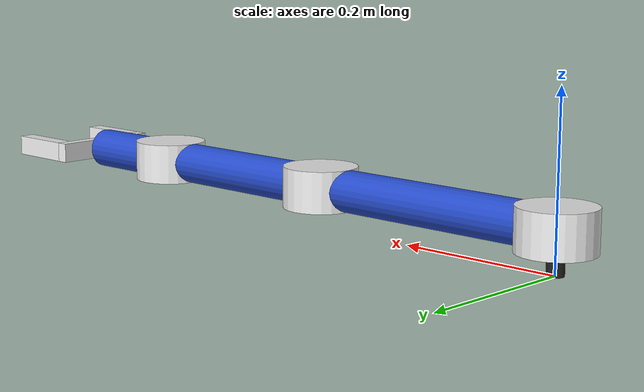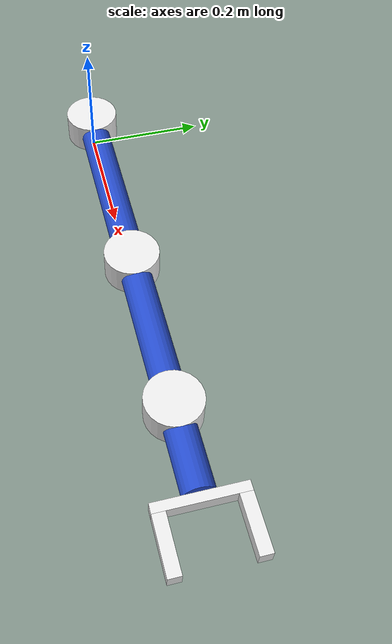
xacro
<?xml version="1.0"?>
<!-- Manipulator 2D robot (based on Revolute-Revolute Manipulator) -->
<robot name="manipulator2d" xmlns:xacro="http://www.ros.org/wiki/xacro">

  <!-- Constants for robot dimensions -->
  <xacro:property name="PI" value="3.1415926535897931"/>
  <xacro:property name="base_z" value="0.0" /> <!-- Height from world to base_link -->
  <xacro:property name="radius_base" value="0.01" />
  <xacro:property name="inner_radius_base" value="0.008" />
  <xacro:property name="joints_radius" value="0.025" />
  <xacro:property name="joints_inner_radius" value="0.0245" />
  <xacro:property name="height_base" value="0.05" /> <!-- Base -->
  <xacro:property name="height1" value="0.3" /> <!-- Link 1 -->
  <xacro:property name="height2" value="0.2" /> <!-- Link 2 -->
  <xacro:property name="height3" value="0.1" /> <!-- Link 3 -->
  <xacro:property name="camera_link" value="0.05" /> <!-- Size of square 'camera' box -->
  <xacro:property name="camera_x" value="0.0" /> <!-- X position 'camera' -->
  <xacro:property name="camera_y" value="0.0" /> <!-- Y position 'camera' -->
  <xacro:property name="camera_z" value="1.2" /> <!-- Z position 'camera' -->
  <xacro:property name="axel_offset" value="${joints_radius + 0.01}" />
  <xacro:property name="radius_axel" value="${axel_offset + 0.01}" />
  <xacro:property name="height_axel" value="${joints_radius*2}" />
  <xacro:property name="md_base" value="7850" /> <!-- Mass density -->
  <xacro:property name="md_links" value="2700" />
  <xacro:property name="mass_base" value="${md_base*PI*(radius_base-inner_radius_base)*height_base}" />
  <xacro:property name="mass1" value="${md_links*PI*(joints_radius-joints_inner_radius)*height1}" />
  <xacro:property name="mass2" value="${md_links*PI*(joints_radius-joints_inner_radius)*height2}" />
  <xacro:property name="mass3" value="${md_links*PI*(joints_radius-joints_inner_radius)*height3}" />
  <xacro:property name="yt" value="0.14" /> <!-- Internal gripper width -->
  <xacro:property name="y1" value="0.02" />
  <xacro:property name="zt" value="0.10" /> <!-- Internal gripper length -->
  <xacro:property name="z1" value="0.015" />
  <xacro:property name="xt" value="0.025" />
  <xacro:property name="gripper_mass" value="0.1" />
  <xacro:property name="dummy_mass" value="0.001" />
  <xacro:property name="dummy_inertia" value="0.001" />

  <!--&lt;!&ndash; Import all Gazebo-customization elements, including Gazebo colors &ndash;&gt;-->
  <!--&lt;!&ndash; Import Rviz colors &ndash;&gt;-->

  <!-- Used for fixing robot to Gazebo 'base_link' -->
  <link name="world"/>

  <joint name="fixed" type="fixed">
    <parent link="world"/>
    <child link="base_link"/>
    <origin xyz="0 0 ${base_z}" rpy="0 0 0"/>
  </joint>

  <link name="base_link">
    <collision>
      <origin xyz="0 0 ${height_base/2}" rpy="0 0 0"/>
      <geometry>
        <cylinder length="${height_base}" radius="${radius_base}"/>
      </geometry>
    </collision>

    <visual>
      <origin xyz="0 0 ${height_base/2}" rpy="0 0 0"/>
      <geometry>
        <cylinder length="${height_base}" radius="${radius_base}"/>
      </geometry>
      <material name="black"/>
    </visual>

    <inertial>
      <origin xyz="0 0 ${height_base/2}" rpy="0 0 0"/>
      <mass value="${mass_base}"/>
      <inertia
      ixx="${mass_base / 12.0 * (3*radius_base*radius_base + height_base*height_base)}" ixy="0.0" ixz="0.0"
      iyy="${mass_base / 12.0 * (3*radius_base*radius_base + height_base*height_base)}" iyz="0.0"
      izz="${mass_base / 2.0 * (radius_base*radius_base)}"/>
    </inertial>
  </link>

  <joint name="joint0" type="revolute">
      <parent link="base_link"/>
      <child link="coupler0"/>
      <origin xyz="0 0 ${height_base/2+joints_radius}" rpy="0 0 0"/>
      <limit effort="100.0" lower="-2.18" upper="2.18" velocity="0.5"/>
      <axis xyz="0 0 1"/>
      <dynamics damping="0.7"/>
  </joint>

  <link name="coupler0">
    <collision>
      <origin xyz="0 0 0" rpy="0 0 0"/>
      <geometry>
        <cylinder length="${height_axel}" radius="${radius_axel}"/>
      </geometry>
      <material name="white"/>
    </collision>

    <visual>
      <origin xyz="0 0 0" rpy="0 0 0"/>
      <geometry>
        <cylinder length="${height_axel}" radius="${radius_axel}"/>
      </geometry>
      <material name="white"/>
    </visual>

    <inertial>
      <origin xyz="0 0 0" rpy="0 0 0"/>
      <mass value="${dummy_mass}"/>
      <inertia
          ixx="${dummy_inertia}" ixy="0.0" ixz="0.0"
          iyy="${dummy_inertia}" iyz="0.0"
          izz="${dummy_inertia}"/>
    </inertial>
  </link>

  <joint name="coupler_joint0" type="fixed">
    <parent link="coupler0"/>
    <child link="link1"/>
    <origin xyz="0 0 0" rpy="0 0 0"/>
  </joint>

  <!-- Base Link -->
  <link name="link1">
    <collision>
      <origin xyz="${height1/2} 0 0" rpy="${PI/2} 0 ${PI/2}"/>
      <geometry>
        <cylinder length="${height1}" radius="${joints_radius}"/>
      </geometry>
    </collision>

    <visual>
      <origin xyz="${height1/2} 0 0" rpy="${PI/2} 0 ${PI/2}"/>
      <geometry>
        <cylinder length="${height1}" radius="${joints_radius}"/>
      </geometry>
      <material name="blue"/>
    </visual>

    <inertial>
      <origin xyz="${height1/2} 0 0" rpy="${PI/2} 0 ${PI/2}"/>
      <mass value="${mass1}"/>
      <inertia
      ixx="${mass1 / 12.0 * (3*joints_radius*joints_radius + height1*height1)}" ixy="0.0" ixz="0.0"
      iyy="${mass1 / 12.0 * (3*joints_radius*joints_radius + height1*height1)}" iyz="0.0"
      izz="${mass1 / 2.0 * (joints_radius*joints_radius)}"/>
    </inertial>

  </link>

  <joint name="joint1" type="revolute">
    <parent link="link1"/>
    <child link="coupler1"/>
    <origin xyz="${height1 + axel_offset} 0 0" rpy="0 0 0"/>
    <limit effort="100.0" lower="-2.18" upper="2.18" velocity="0.5"/>
    <axis xyz="0 0 1"/>
    <dynamics damping="0.7"/>
  </joint>

  <link name="coupler1">
    <collision>
      <origin xyz="0 0 0" rpy="0 0 0"/>
      <geometry>
        <cylinder length="${height_axel}" radius="${radius_axel}"/>
      </geometry>
      <material name="white"/>
    </collision>

    <visual>
      <origin xyz="0 0 0" rpy="0 0 0"/>
      <geometry>
        <cylinder length="${height_axel}" radius="${radius_axel}"/>
      </geometry>
      <material name="white"/>
    </visual>

    <inertial>
      <origin xyz="0 0 0" rpy="0 0 0"/>
      <mass value="${dummy_mass}"/>
      <inertia
          ixx="${dummy_inertia}" ixy="0.0" ixz="0.0"
          iyy="${dummy_inertia}" iyz="0.0"
          izz="${dummy_inertia}"/>
    </inertial>
  </link>

  <joint name="coupler_joint1" type="fixed">
    <parent link="coupler1"/>
    <child link="link2"/>
    <origin xyz="${axel_offset} 0 0" rpy="0 0 0"/>
  </joint>

   <!--Middle Link-->
  <link name="link2">
    <collision>
      <origin xyz="${height2/2} 0 0" rpy="${PI/2} 0 ${PI/2}"/>
      <geometry>
        <cylinder length="${height2}" radius="${joints_radius}"/>
      </geometry>
    </collision>

    <visual>
      <origin xyz="${height2/2} 0 0" rpy="${PI/2} 0 ${PI/2}"/>
      <geometry>
        <cylinder length="${height2}" radius="${joints_radius}"/>
      </geometry>
      <material name="blue"/>
    </visual>

    <inertial>
      <origin xyz="${height2/2} 0 0" rpy="${PI/2} 0 ${PI/2}"/>
      <mass value="${mass2}"/>
      <inertia
      ixx="${mass2 / 12.0 * (3*joints_radius*joints_radius + height1*height2)}" ixy="0.0" ixz="0.0"
      iyy="${mass2 / 12.0 * (3*joints_radius*joints_radius + height1*height2)}" iyz="0.0"
      izz="${mass2 / 2.0 * (joints_radius*joints_radius)}"/>
    </inertial>
  </link>

  <joint name="joint2" type="revolute">
    <parent link="link2"/>
    <child link="coupler2"/>
    <origin xyz="${height2 + axel_offset} 0 0" rpy="0 0 0"/>
    <limit effort="100.0" lower="-2.18" upper="2.18" velocity="0.5"/>
    <axis xyz="0 0 1"/>
    <dynamics damping="0.7"/>
  </joint>

  <link name="coupler2">
    <collision>
      <origin xyz="0 0 0" rpy="0 0 0"/>
      <geometry>
        <cylinder length="${height_axel}" radius="${radius_axel}"/>
      </geometry>
      <material name="white"/>
    </collision>

    <visual>
      <origin xyz="0 0 0" rpy="0 0 0"/>
      <geometry>
        <cylinder length="${height_axel}" radius="${radius_axel}"/>
      </geometry>
      <material name="white"/>
    </visual>

    <inertial>
      <origin xyz="0 0 0" rpy="0 0 0"/>
      <mass value="${dummy_mass}"/>
      <inertia
          ixx="${dummy_inertia}" ixy="0.0" ixz="0.0"
          iyy="${dummy_inertia}" iyz="0.0"
          izz="${dummy_inertia}"/>
    </inertial>
  </link>

  <joint name="coupler_joint2" type="fixed">
    <parent link="coupler2"/>
    <child link="link3"/>
    <origin xyz="${axel_offset} 0 0" rpy="0 0 0"/>
  </joint>

   <!--Top Link-->
  <link name="link3">
    <collision>
      <origin xyz="${height3/2} 0 0" rpy="${PI/2} 0 ${PI/2}"/>
      <geometry>
        <cylinder length="${height3}" radius="${joints_radius}"/>
      </geometry>
    </collision>

    <visual>
      <origin xyz="${height3/2} 0 0" rpy="${PI/2} 0 ${PI/2}"/>
      <geometry>
        <cylinder length="${height3}" radius="${joints_radius}"/>
      </geometry>
      <material name="blue"/>
    </visual>

    <inertial>
      <origin xyz="${height3/2} 0 0" rpy="${PI/2} 0 ${PI/2}"/>
      <mass value="${mass3}"/>
      <inertia
      ixx="${mass3 / 12.0 * (3*joints_radius*joints_radius + height1*height3)}" ixy="0.0" ixz="0.0"
      iyy="${mass3 / 12.0 * (3*joints_radius*joints_radius + height1*height3)}" iyz="0.0"
      izz="${mass3 / 2.0 * (joints_radius*joints_radius)}"/>
    </inertial>
  </link>

  <joint name="gripper_joint" type="fixed">
    <parent link="link3"/>
    <child link="gripper"/>
    <origin xyz="${height3} 0 0" rpy="0 0 0"/>
  </joint>

  <link name="gripper">
    <collision>
      <origin xyz="${z1/2} 0 0" rpy="${PI/2} 0 ${PI/2}"/>
      <geometry>
        <box size="${yt} ${xt} ${z1}"/>
      </geometry>
      <material name="white"/>
    </collision>
    <collision>
      <origin xyz="${z1+(zt-z1)/2} ${yt/2-y1/2} 0" rpy="${PI/2} 0 ${PI/2}"/>
      <geometry>
        <box size="${y1} ${xt} ${zt-z1}"/>
      </geometry>
      <material name="white"/>
    </collision>
    <collision>
      <origin xyz="${z1+(zt-z1)/2} -${yt/2-y1/2} 0" rpy="${PI/2} 0 ${PI/2}"/>
      <geometry>
        <box size="${y1} ${xt} ${zt-z1}"/>
      </geometry>
      <material name="white"/>
    </collision>

    <visual>
      <origin xyz="${z1/2} 0 0" rpy="${PI/2} 0 ${PI/2}"/>
      <geometry>
        <box size="${yt} ${xt} ${z1}"/>
      </geometry>
      <material name="white"/>
    </visual>
    <visual>
      <origin xyz="${z1+(zt-z1)/2} ${yt/2-y1/2} 0" rpy="${PI/2} 0 ${PI/2}"/>
      <geometry>
        <box size="${y1} ${xt} ${zt-z1}"/>
      </geometry>
      <material name="white"/>
    </visual>
    <visual>
      <origin xyz="${z1+(zt-z1)/2} -${yt/2-y1/2} 0" rpy="${PI/2} 0 ${PI/2}"/>
      <geometry>
        <box size="${y1} ${xt} ${zt-z1}"/>
      </geometry>
      <material name="white"/>
    </visual>

    <inertial>
      <origin xyz="0 0 0" rpy="0 0 0"/>
      <mass value="${gripper_mass}"/>
      <inertia
          ixx="${dummy_inertia}" ixy="0.0" ixz="0.0"
          iyy="${dummy_inertia}" iyz="0.0"
          izz="${dummy_inertia}"/>
    </inertial>
  </link>

  <joint name="gripper_center_joint" type="fixed">
    <parent link="gripper"/>
    <child link="gripper_center"/>
    <origin xyz="${zt/2+y1/2} 0 0" rpy="0 0 0"/>
  </joint>

  <link name="gripper_center">
    <inertial>
      <origin xyz="0 0 0" rpy="0 0 0"/>
      <mass value="${dummy_mass}"/>
      <inertia
          ixx="${dummy_inertia}" ixy="0.0" ixz="0.0"
          iyy="${dummy_inertia}" iyz="0.0"
          izz="${dummy_inertia}"/>
    </inertial>
  </link>

  <!--&lt;!&ndash; Hokuyo Laser &ndash;&gt;-->

  <!-- Camera -->

  <!-- generate an optical frame http://www.ros.org/reps/rep-0103.html#suffix-frames
      so that ros and opencv can operate on the camera frame correctly -->
    <!--&lt;!&ndash; these values have to be these values otherwise the gazebo camera image-->
        <!--won't be aligned properly with the frame it is supposedly originating from &ndash;&gt;-->

  <transmission name="tran0">
    <type>transmission_interface/SimpleTransmission</type>
    <joint name="joint0">
      <hardwareInterface>hardware_interface/EffortJointInterface</hardwareInterface>
    </joint>
    <actuator name="motor0">
      <hardwareInterface>hardware_interface/EffortJointInterface</hardwareInterface>
      <mechanicalReduction>1</mechanicalReduction>
    </actuator>
  </transmission>

  <transmission name="tran1">
    <type>transmission_interface/SimpleTransmission</type>
    <joint name="joint1">
      <hardwareInterface>hardware_interface/EffortJointInterface</hardwareInterface>
    </joint>
    <actuator name="motor1">
      <hardwareInterface>hardware_interface/EffortJointInterface</hardwareInterface>
      <mechanicalReduction>1</mechanicalReduction>
    </actuator>
  </transmission>

  <transmission name="tran2">
    <type>transmission_interface/SimpleTransmission</type>
    <joint name="joint2">
      <hardwareInterface>hardware_interface/EffortJointInterface</hardwareInterface>
    </joint>
    <actuator name="motor2">
      <hardwareInterface>hardware_interface/EffortJointInterface</hardwareInterface>
      <mechanicalReduction>1</mechanicalReduction>
    </actuator>
  </transmission>

</robot>
